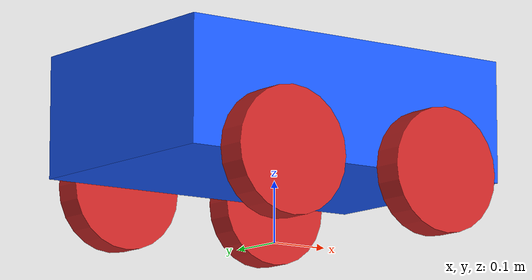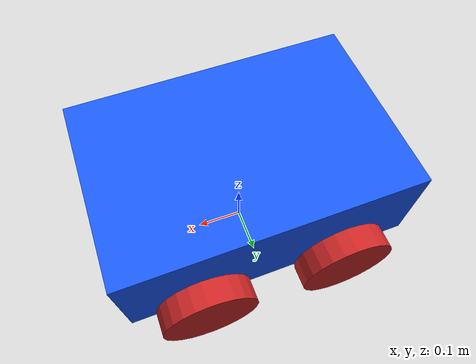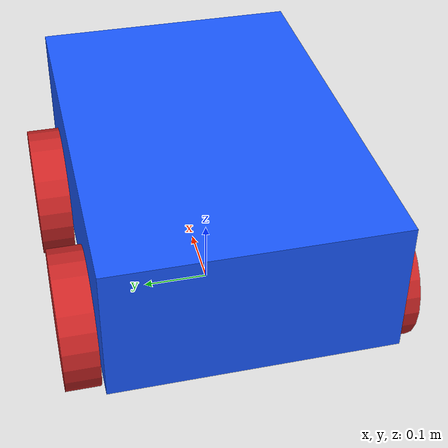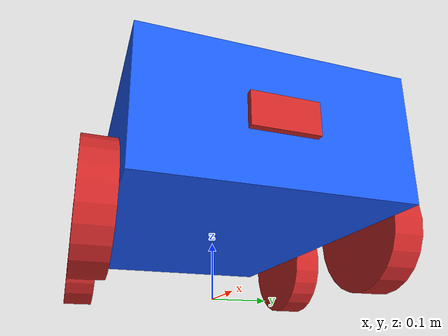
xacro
<?xml version="1.0"?>
<robot name="my_robot" xmlns:xacro="http://www.ros.org/wiki/xacro">

    <!-- 'common_properties' should come first so other files have access to it -->
    <xacro:include filename="common_properties.xacro" />
    <xacro:include filename="mobile_base.xacro" />
    <xacro:include filename="mobile_base_gazebo.xacro" />
    <xacro:include filename="camera.xacro" />

</robot>

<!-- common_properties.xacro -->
<robot xmlns:xacro="http://www.ros.org/wiki/xacro">

    <material name="blue">
        <color rgba="0.10 0.35 1.0 1" /> <!-- r g b alpha -->
    </material>

    <material name="grey">
        <color rgba="0.5 0.5 0.5 1" /> <!-- r g b alpha -->
    </material>

    <material name="orange">
        <color rgba="1.00 0.38 0.02 1" /> <!-- r g b alpha -->
    </material>

    <material name="yellow">
        <color rgba="1.0 0.65 0.1  1" /> <!-- r g b alpha -->
    </material>

    <xacro:macro name="box_inertia" params="m x y z o_xyz o_rpy">
        <inertial>
            <mass value="${m}" />
            <origin xyz="${o_xyz}" rpy="${o_rpy}" />
            <inertia ixx="${(m/12) * (y*y + z*z)}" ixy="0" ixz="0"
                     iyy="${(m/12) * (x*x + z*z)}" iyz="0"
                     izz="${(m/12) * (y*y + x*x)}" />
        </inertial>
    </xacro:macro>

    <xacro:macro name="cylinder_inertia" params="m r h o_xyz o_rpy">
        <inertial>
            <mass value="${m}" />
            <origin xyz="${o_xyz}" rpy="${o_rpy}" />
            <inertia ixx="${(m/12) * (3*r*r + h*h)}" ixy="0" ixz="0"
                     iyy="${(m/12) * (3*r*r + h*h)}" iyz="0"
                     izz="${(m/2) * (r*r)}" />
        </inertial>
    </xacro:macro>

    <xacro:macro name="sphere_inertia" params="m r o_xyz o_rpy">
        <inertial>
            <mass value="${m}" />
            <origin xyz="${o_xyz}" rpy="${o_rpy}" />
            <inertia ixx="${(2/5) * m * r*r}" ixy="0" ixz="0"
                     iyy="${(2/5) * m * r*r}" iyz="0"
                     izz="${(2/5) * m * r*r}" />
        </inertial>
    </xacro:macro>

</robot>

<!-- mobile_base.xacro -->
<robot xmlns:xacro="http://www.ros.org/wiki/xacro">

    <xacro:property name="base_length" value="0.6" />
    <xacro:property name="base_width" value="0.4" />
    <xacro:property name="base_height" value="0.2" />
    <xacro:property name="wheel_radius" value="0.1" />
    <xacro:property name="wheel_length" value="0.05" />

    <link name="imu_frame"/>

    <joint name="imu_joint" type="fixed">
        <parent link="base_link"/>
        <child link="imu_frame"/>
        <origin xyz="0.0 0.0 0.08" rpy="0.0 0.0 0.0"/>
    </joint>

    <link name="base_link">
        <visual>
            <geometry>
                <box size="${base_length} ${base_width} ${base_height}" />
            </geometry>
            <origin xyz="0 0 ${base_height / 2.0}" rpy="0 0 0" />
            <material name="blue" />
        </visual>
        <collision>
            <geometry>
                <box size="${base_length} ${base_width} ${base_height}" />
            </geometry>
            <origin xyz="0 0 ${base_height / 2.0}" rpy="0 0 0" />
        </collision>
        <xacro:box_inertia m="100.0" l="${2*base_length}" w="${2*base_width}" h="${2*base_height}"
                           xyz="0 0 ${base_height / 2.0}" rpy="0 0 0" />
    </link>

    <xacro:macro name="wheel_link" params="prefix">
        <link name="${prefix}_wheel_link">
            <visual>
                <geometry>
                    <cylinder radius="${wheel_radius}" length="${wheel_length}" />
                </geometry>
                <origin xyz="0 0 0" rpy="${pi / 2.0} 0 0" />
                <material name="red" />
            </visual>
            <collision>
                <geometry>
                    <cylinder radius="${wheel_radius}" length="${wheel_length}" />
                </geometry>
                <origin xyz="0 0 0" rpy="${pi / 2.0} 0 0" />
            </collision>
            <xacro:cylinder_inertia m="10.0" r="${2*wheel_radius}" h="${2*wheel_length}"
                                    xyz="0 0 0" rpy="${pi / 2.0} 0 0" />
        </link>
    </xacro:macro>

    <xacro:wheel_link prefix="right_back" />
    <xacro:wheel_link prefix="left_back" />
    <xacro:wheel_link prefix="right_front" />
    <xacro:wheel_link prefix="left_front" />

    <link name="base_footprint">
    </link>

    <joint name="base_right_back_wheel_joint" type="continuous">
        <parent link="base_link" />
        <child link="right_back_wheel_link" />
        <origin xyz="${-base_length / 4.0} ${-(base_width + wheel_length) / 2.0} 0" rpy="0 0 0" />
        <axis xyz="0 1 0" />
    </joint>

    <joint name="base_right_front_wheel_joint" type="continuous">
        <parent link="base_link" />
        <child link="right_front_wheel_link" />
        <origin xyz="${(base_length) / 4.0} ${-(base_width + wheel_length) / 2.0} 0" rpy="0 0 0" />
        <axis xyz="0 1 0" />
    </joint>

     <joint name="base_left_back_wheel_joint" type="continuous">
        <parent link="base_link" />
        <child link="left_back_wheel_link" />
        <origin xyz="${-base_length / 4.0} ${(base_width + wheel_length) / 2.0} 0" rpy="0 0 0" />
        <axis xyz="0 1 0" />
    </joint>

    <joint name="base_left_front_wheel_joint" type="continuous">
        <parent link="base_link" />
        <child link="left_front_wheel_link" />
        <origin xyz="${base_length / 4.0} ${(base_width + wheel_length) / 2.0} 0" rpy="0 0 0" />
        <axis xyz="0 1 0" />
    </joint>

    <joint name="base_footprint_joint" type="fixed">
        <parent link="base_footprint" />
        <child link="base_link" />
        <origin xyz="0 0 ${wheel_radius}" rpy="0 0 0" />
    </joint>

</robot>

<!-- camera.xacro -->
<robot xmlns:xacro="http://www.ros.org/wiki/xacro">

    <xacro:property name="camera_length" value="0.01" />
    <xacro:property name="camera_width" value="0.1" />
    <xacro:property name="camera_height" value="0.05" />

    <link name="camera_link">
        <visual>
            <geometry>
                <box size="${camera_length} ${camera_width} ${camera_height}" />
            </geometry>
            <material name="red" />
        </visual>
        <collision>
            <geometry>
                <box size="${camera_length} ${camera_width} ${camera_height}" />
            </geometry>
        </collision>
        <xacro:box_inertia m="0.1" l="${camera_length}" w="${camera_width}" h="${camera_height}"
                           xyz="0 0 0" rpy="0 0 0" />
    </link>

    <joint name="base_camera_joint" type="fixed">
        <parent link="base_link" />
        <child link="camera_link" />
        <origin xyz="${(base_length + camera_length) / 2.0} 0 ${base_height / 2.0}" rpy="0 0 0" />
    </joint>

    <gazebo reference="camera_link">
        <material>Gazebo/Red</material>
        <sensor name="camera_sensor" type="camera">
            <pose>0 0 0 0 0 0</pose>
            <visualize>true</visualize>
            <update_rate>10.0</update_rate>
            <plugin name="camera_controller" filename="libgazebo_ros_camera.so">
                <frame_name>camera_link</frame_name>
            </plugin>
        </sensor>
    </gazebo>

</robot>
